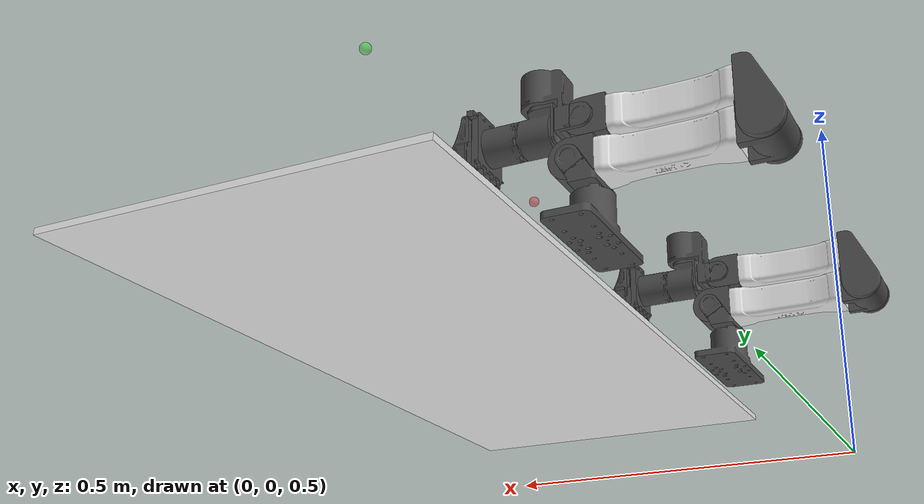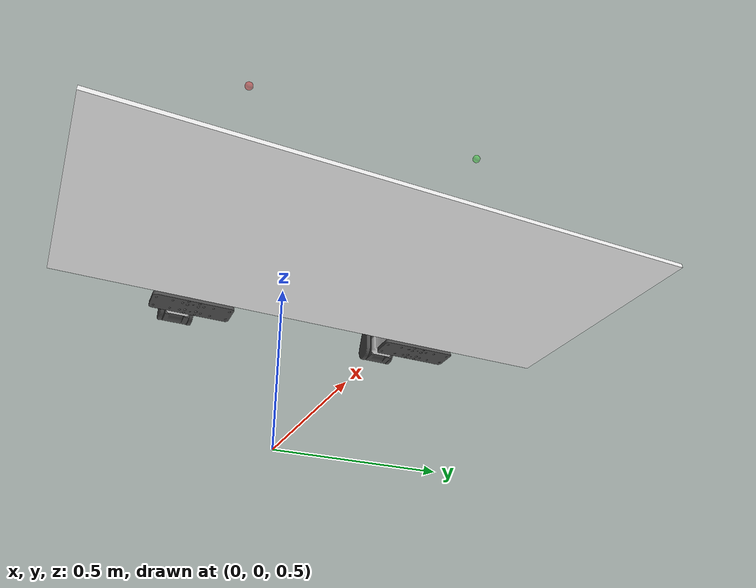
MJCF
<mujoco model="yam_bimanual_empty">
  <compiler angle="radian" meshdir="assets/i2rt_yam/assets" boundmass="0.001" boundinertia="0.001"/>

  <option integrator="implicitfast"/>

  <visual>
    <global azimuth="120" elevation="-20" offwidth="1920" offheight="1080"/>
    <quality shadowsize="8192" offsamples="16"/>
    <headlight ambient="0.40 0.40 0.40" diffuse="0.0 0.0 0.0" specular="0 0 0"/>
    <rgba haze="1.0 1.0 1.0 1"/>
  </visual>

  <default>
    <default class="yam">
      <position inheritrange="1"/>
      <joint frictionloss="0.1" axis="0 0 1"/>
      <default class="dm4340">
        <joint armature="0.032"/>
        <position kp="40" kv="2.5" forcerange="-28 28"/>
      </default>
      <default class="dm4310">
        <joint armature="0.0018"/>
        <position kp="10" kv="1" forcerange="-10 10"/>
      </default>
      <default class="visual">
        <geom type="mesh" contype="0" conaffinity="0" density="0" group="2" material="black"/>
      </default>
      <default class="collision">
        <geom group="3" type="capsule" friction="2.0 0.1 0.01" condim="6"/>
        <default class="sphere_collision">
          <geom size="0.0006 0 0" type="sphere" rgba="1 0 0 1" friction="4.0 0.1 0.01" condim="6" solimp="0.998 0.998 0.001" solref="0.004 1"/>
        </default>
      </default>
      <default class="finger">
        <joint type="slide" armature="0.1" frictionloss="0.1"/>
        <position ctrlrange="0.0 0.0495" kp="400" kv="14" inheritrange="0"/>
      </default>
    </default>
  </default>

  <asset>
    <material name="black" rgba="0.30 0.30 0.30 1"/>
    <material name="white" rgba="0.9 0.9 0.9 1"/>

    <mesh file="model2.stl"/>
    <mesh file="model2__2.stl"/>
    <mesh file="model2__3.stl"/>
    <mesh file="model2__4.stl"/>
    <mesh file="model2__5.stl"/>
    <mesh file="model2__6.stl"/>
    <mesh file="model2__7.stl"/>
    <mesh file="model2__8.stl"/>
    <mesh file="model2__9.stl"/>
    <mesh file="model2__10.stl"/>
    <mesh file="model2__11.stl"/>
    <mesh file="model2__12.stl"/>
    <mesh file="model2__13.stl"/>
    <mesh file="model2__14.stl"/>
    <mesh file="model2__15.stl"/>
    <mesh file="model2__16.stl"/>
    <mesh file="model2__17.stl"/>
    <mesh name="base_visual_gate" file="base_visual_gate.stl"/>
    <mesh name="camera_d405" file="d405.stl"/>

    <texture type="skybox" builtin="gradient" rgb1="1.0 1.0 1.0" rgb2="0.98 0.98 0.98" width="512" height="3072"/>
    <texture type="2d" name="groundplane" builtin="checker" mark="edge"
      rgb1="0.55 0.55 0.55" rgb2="0.50 0.50 0.50" markrgb="0.6 0.6 0.6" width="300" height="300"/>
    <material name="groundplane" texture="groundplane" texuniform="true" texrepeat="5 5" reflectance="0.2"/>
  </asset>

  <worldbody>
    <!-- Lighting -->
    <light pos="0 0 1.5" dir="0 0 -1" directional="true"
      diffuse="0.30 0.30 0.30" specular="0.05 0.05 0.05"/>

    <!-- Floor -->

    <!-- Gate/station structure (visual) -->

    <geom size="0.2975 0.65 0.375" pos="0 0 0.375" type="box" group="3" rgba="1 0 0 0.0"/>

    <!-- Gate collision bodies + top camera -->

    <!-- Enclosure walls ( matching real white-walled workspace) -->
    <!-- Back wall: behind the table, spanning full Y width -->

    <!-- Left wall: at positive Y, from gate to back wall -->

    <!-- Right wall: at negative Y, from gate to back wall -->

    <!-- Play table (visual only + collision plane at surface) -->

    <!-- Side cameras on cage walls -->

    <!-- Overhead camera -->

    <body name="play_table">
      <geom size="0.2975 0.65 0.005" pos="0.6 0 0.745" type="box" group="2" contype="0" conaffinity="0" rgba="0.92 0.92 0.92 1"/>
    </body>
    <geom name="table_plane" type="plane" size="0.2975 0.65 0.01" pos="0.6 0 0.75" rgba="0 0 0 0" group="3"/>

    <!-- ==================== LEFT ARM ==================== -->
    <body name="left_arm" pos="0.2525 0.31 0.75" childclass="yam">
      <geom class="visual" pos="0 0 -0.0006" quat="1 0 0 1" mesh="model2"/>
      <geom class="collision" size="0.033 0.01" pos="0.0 0.0 0.026" quat="1 0 0 0"/>
      <body name="left_link_1" pos="0 0 0.0631" quat="1 0 0 1">
        <inertial pos="-0.00192861 -0.00795735 0.0208176" quat="0.297851 0.642634 0.360045 0.607185" mass="0.12415"
          diaginertia="0.000180751 0.000145532 5.89179e-05"/>
        <joint name="left_joint1" range="-2.61799 3.05433" class="dm4340"/>
        <geom class="visual" pos="5.26159e-07 2.34355e-07 -0.0632" quat="1 0 0 0" mesh="model2__2"/>
        <body name="left_link_2" pos="2.5e-05 -0.02 0.0409" quat="1 1 1 1" gravcomp="1">
          <inertial pos="0.132008 2.10599e-06 0.000293073" quat="1 1 1 1" mass="1.24434"
            diaginertia="0.0121902 0.0121318 0.000683304"/>
          <joint name="left_joint2" range="0 3.66519" class="dm4340"/>
          <geom class="visual" pos="0.0199992 -0.1041 -2.44738e-05" quat="1 -1 -1 -1" mesh="model2__3"/>
          <geom class="visual" pos="0.0199992 -0.1041 -2.44738e-05" quat="1 -1 -1 -1" mesh="model2__4"/>
          <geom class="visual" pos="0.0199992 -0.1041 -2.44738e-05" quat="1 -1 -1 -1" mesh="model2__5" material="white"/>
          <geom class="collision" size="0.032 0.11" pos="0.13 0 0" quat="1 0 1 0"/>
          <geom class="collision" size="0.033 0.02" pos="0 0.0 0" quat="1 0 0 0"/>
          <geom class="collision" size="0.033 0.025" pos="0.265 0 0" quat="1 0 0 0"/>
          <body name="left_link_3" pos="0.264 0 0" quat="0 1 0 0" gravcomp="1">
            <inertial pos="-0.121816 -0.054846 -0.000111108" quat="1 1 1 1" mass="0.853698"
              diaginertia="0.00699732 0.00696112 0.000788244"/>
            <joint name="left_joint3" range="0 3.66519" class="dm4340"/>
            <geom class="visual" pos="-0.244001 0.104101 2.44738e-05" quat="1 1 1 -1" mesh="model2__6"/>
            <geom class="visual" pos="-0.244001 0.104101 2.44738e-05" quat="1 1 1 -1" mesh="model2__7"/>
            <geom class="visual" pos="-0.244001 0.104101 2.44738e-05" quat="1 1 1 -1" mesh="model2__8" material="white"/>
            <geom class="visual" pos="-0.244001 0.104101 2.44738e-05" quat="1 1 1 -1" mesh="model2__9"/>
            <geom class="collision" size="0.034 0.12" pos="-0.14 -0.06 0.0" quat="1 0 1 0"/>
            <geom class="collision" size="0.034 0.015" pos="-0.24 -0.06 0.0" quat="1 0 0 0"/>
            <body name="left_link_4" pos="-0.245 -0.06 0" quat="1 0 0 0" gravcomp="1">
              <inertial pos="-0.0769778 -0.0527104 0.000154878" quat="0.667 0.667 -0.236 -0.236" mass="0.463511"
                diaginertia="0.000791532 0.000744733 0.000282116"/>
              <joint name="left_joint4" range="-1.5708 1.5708" class="dm4310"/>
              <geom class="visual" pos="0.00100023 0.164101 2.44738e-05" quat="1 1 1 -1" mesh="model2__10"/>
              <geom class="collision" size="0.03 0.015" pos="-0.073 -0.06 0.0" quat="1 1 0 0"/>
              <body name="left_link_5" pos="-0.074 -0.0395 2.5e-05" quat="1 -1 1 1" gravcomp="1">
                <inertial pos="3.64861e-05 0.00025665 0.0353526" quat="1 0 0 0" mass="0.350962"
                  diaginertia="0.000197802 0.0001775 0.000147402"/>
                <joint name="left_joint5" range="-1.5708 1.5708" class="dm4310"/>
                <geom class="visual" pos="0 -0.0749971 0.203601" quat="1.32679e-06 1 0 0" mesh="model2__11"/>
                <geom class="collision" size="0.030 0.015" pos="0 0.025 0.0395" quat="1 1 0 0"/>
                <body name="left_link_6" pos="0 0.0353 0.0395" quat="1 -1 0 0" gravcomp="1">
                  <inertial pos="-0.000217767 7.37059e-05 0.0270545" quat="1 1 0 0" mass="0.367476"
                    diaginertia="0.000265958 0.000242686 0.000227409"/>
                  <joint name="left_joint6" range="-2.0944 2.0944" class="dm4310"/>
                  <geom class="visual" pos="0 -0.164101 -0.110597" quat="1 -1 0 0" mesh="model2__12"/>
                  <geom class="visual" pos="0 -0.164101 -0.110597" quat="1 -1 0 0" mesh="model2__13"/>
                  <geom class="collision" size="0.01 0.035" pos="0 0.039 0.052" quat="1 0 1 0"/>
                  <geom class="collision" size="0.030 0.005" pos="0 0.0 0.03" quat="1 0 0 1"/>
                  <geom class="collision" size="0.01 0.035" pos="0 -0.039 0.052" quat="1 0 1 0"/>
                  <site name="left_tcp_site" pos="0 0 0" quat="1 0 0 -1" size="0.005" rgba="1 0 0 1" group="4"/>
                  <site name="left_grasp_site" pos="0 0 0.1347" quat="1 0 0 -1" size="0.005" rgba="0 1 0 1" group="4"/>
                  <!-- Wrist-mounted left camera (D405) — tilt 50° to match real D405 mounting -->
                  <body name="left_camera_d405" pos="-0.0107 0.095 0.062" quat="0.906 0.423 0 0">
                    <geom type="mesh" contype="0" conaffinity="0" group="3" density="0.001" mass="0.001"
                      rgba="0 0 0 0" mesh="camera_d405"/>
                    <geom name="left_cam_col" type="sphere" size="0.02" pos="0 0 0"
                      group="3" rgba="0 0 1 0.0" mass="0.001"/>
                    <body name="left_camera_frame" pos="0.009 0 0" quat="0 0 0 1">
                      <camera name="left" pos="0 0 0" quat="0 1 0 0" fovy="58"/>
                    </body>
                  </body>
                  <body name="left_link_left_finger" pos="-0.037 0.0392 0.0605" quat="1 0 1 0" gravcomp="1">
                    <inertial pos="-0.0192995 -0.0365902 0.039774" quat="0.757351 0.568898 -0.3199 0.0" mass="0.118"
                      diaginertia="0.000159084 0.000154909 4.63655e-05"/>
                    <joint class="finger" name="left_left_finger" range="-0.00205 0.0475"/>
                    <geom class="visual" pos="0.171097 -0.203301 0.037" quat="1 -1 -1 -1" mesh="model2__14"/>
                    <geom class="visual" pos="0.171097 -0.203301 0.037" quat="1 -1 -1 -1" mesh="model2__15"/>
                    <body name="left_lf_rot" quat="1 -1 -1 1" pos="0.0 -0.0392 0.037" gravcomp="1">
                      <geom class="collision" size="0.01 0.03" pos="0.0 -0.02 0.012" quat="1 0 1 0"
                        rgba="0.381493 0.492734 0.780446 1"/>
                      <geom class="collision" size="0.01 0.02" pos="-0.02 -0.01 0.032" quat="1 0 2.5 0"
                        rgba="0.381493 0.492734 0.780446 1"/>
                      <body name="left_lf_down" quat="1 0 0 0" pos="-0.044 0.0 0.0" gravcomp="1">
                        <geom class="collision" size="0.01 0.01" pos="0.0 -0.020 0.012" quat="1 -0.1 0 0"
                          rgba="0.381493 0.492734 0.780446 1"/>
                        <geom class="collision" size="0.003 0.022" pos="0.005 -0.014 0.04" quat="1 -0.2 0 0"
                          rgba="0.381493 0.492734 0.780446 1"/>
                        <geom class="collision" size="0.003 0.022" pos="-0.005 -0.014 0.04" quat="1 -0.2 0 0"
                          rgba="0.381493 0.492734 0.780446 1"/>
                        <geom class="collision" type="box" size="0.006 0.002 0.04" friction="4.0 0.1 0.01" pos="0 -0.0024 0.046" quat="1 0 0 0"
                          rgba="0.381493 0.492734 0.780446 1"/>
                        <geom class="collision" type="box" size="0.006 0.002 0.039" friction="4.0 0.1 0.01" pos="0.027 -0.0024 0.053"
                          quat="1 0 2.5 0" rgba="0.381493 0.492734 0.780446 1"/>
                        <geom class="sphere_collision" pos="0.003  -0.0004 0.078"/>
                        <geom class="sphere_collision" pos="-0.003 -0.0004 0.078"/>
                        <geom class="sphere_collision" pos="0.003  -0.0004 0.07"/>
                        <geom class="sphere_collision" pos="-0.003 -0.0004 0.07"/>
                        <geom class="sphere_collision" pos="0.003  -0.0004 0.06"/>
                        <geom class="sphere_collision" pos="-0.003 -0.0004 0.06"/>
                      </body>
                    </body>
                  </body>
                  <body name="left_link_right_finger" pos="0.037 -0.0392 0.0605" quat="1 0 1 0" gravcomp="1">
                    <inertial pos="-0.0192995 0.0365902 -0.039774" quat="-0.757351 0.568898 -0.3199 0" mass="0.118"
                      diaginertia="0.000159084 0.000154909 4.63655e-05"/>
                    <joint class="finger" name="left_right_finger" range="-0.0475 0.00205"/>
                    <geom class="visual" pos="0.171097 -0.124901 -0.037" quat="1 -1 -1 -1" mesh="model2__16"/>
                    <geom class="visual" pos="0.171097 -0.124901 -0.037" quat="1 -1 -1 -1" mesh="model2__17"/>
                    <body name="left_rf_rot" quat="1 1 -1 -1" pos="0.0 0.0392 -0.037" gravcomp="1">
                      <geom class="collision" size="0.01 0.03" pos="0.0 -0.02 0.012" quat="1 0 1 0"
                        rgba="0.381493 0.492734 0.780446 1"/>
                      <geom class="collision" size="0.01 0.02" pos="0.02 -0.01 0.032" quat="1 0 -2.5 0"
                        rgba="0.381493 0.492734 0.780446 1"/>
                      <body name="left_rf_down" quat="1 0 0 0" pos="0.044 0.0 0.0" gravcomp="1">
                        <geom class="collision" size="0.01 0.01" pos="0.0 -0.020 0.012" quat="1 -0.1 0 0"
                          rgba="0.381493 0.492734 0.780446 1"/>
                        <geom class="collision" size="0.003 0.022" pos="0.005 -0.014 0.04" quat="1 -0.2 0 0"
                          rgba="0.381493 0.492734 0.780446 1"/>
                        <geom class="collision" size="0.003 0.022" pos="-0.005 -0.014 0.04" quat="1 -0.2 0 0"
                          rgba="0.381493 0.492734 0.780446 1"/>
                        <geom class="collision" type="box" size="0.006 0.002 0.04" friction="4.0 0.1 0.01" pos="0 -0.0024 0.046" quat="1 0 0 0"
                          rgba="0.381493 0.492734 0.780446 1"/>
                        <geom class="collision" type="box" size="0.006 0.002 0.039" friction="4.0 0.1 0.01" pos="-0.027 -0.0024 0.053"
                          quat="1 0 -2.5 0" rgba="0.381493 0.492734 0.780446 1"/>
                        <geom class="sphere_collision" pos="0.003  -0.0004 0.078"/>
                        <geom class="sphere_collision" pos="-0.003 -0.0004 0.078"/>
                        <geom class="sphere_collision" pos="0.003  -0.0004 0.07"/>
                        <geom class="sphere_collision" pos="-0.003 -0.0004 0.07"/>
                        <geom class="sphere_collision" pos="0.003  -0.0004 0.06"/>
                        <geom class="sphere_collision" pos="-0.003 -0.0004 0.06"/>
                      </body>
                    </body>
                  </body>
                </body>
              </body>
            </body>
          </body>
        </body>
      </body>
    </body>

    <!-- ==================== RIGHT ARM ==================== -->
    <body name="right_arm" pos="0.2525 -0.31 0.75" childclass="yam">
      <geom class="visual" pos="0 0 -0.0006" quat="1 0 0 1" mesh="model2"/>
      <geom class="collision" size="0.033 0.01" pos="0.0 0.0 0.026" quat="1 0 0 0"/>
      <body name="right_link_1" pos="0 0 0.0631" quat="1 0 0 1">
        <inertial pos="-0.00192861 -0.00795735 0.0208176" quat="0.297851 0.642634 0.360045 0.607185" mass="0.12415"
          diaginertia="0.000180751 0.000145532 5.89179e-05"/>
        <joint name="right_joint1" range="-2.61799 3.05433" class="dm4340"/>
        <geom class="visual" pos="5.26159e-07 2.34355e-07 -0.0632" quat="1 0 0 0" mesh="model2__2"/>
        <body name="right_link_2" pos="2.5e-05 -0.02 0.0409" quat="1 1 1 1" gravcomp="1">
          <inertial pos="0.132008 2.10599e-06 0.000293073" quat="1 1 1 1" mass="1.24434"
            diaginertia="0.0121902 0.0121318 0.000683304"/>
          <joint name="right_joint2" range="0 3.66519" class="dm4340"/>
          <geom class="visual" pos="0.0199992 -0.1041 -2.44738e-05" quat="1 -1 -1 -1" mesh="model2__3"/>
          <geom class="visual" pos="0.0199992 -0.1041 -2.44738e-05" quat="1 -1 -1 -1" mesh="model2__4"/>
          <geom class="visual" pos="0.0199992 -0.1041 -2.44738e-05" quat="1 -1 -1 -1" mesh="model2__5" material="white"/>
          <geom class="collision" size="0.032 0.11" pos="0.13 0 0" quat="1 0 1 0"/>
          <geom class="collision" size="0.033 0.02" pos="0 0.0 0" quat="1 0 0 0"/>
          <geom class="collision" size="0.033 0.025" pos="0.265 0 0" quat="1 0 0 0"/>
          <body name="right_link_3" pos="0.264 0 0" quat="0 1 0 0" gravcomp="1">
            <inertial pos="-0.121816 -0.054846 -0.000111108" quat="1 1 1 1" mass="0.853698"
              diaginertia="0.00699732 0.00696112 0.000788244"/>
            <joint name="right_joint3" range="0 3.66519" class="dm4340"/>
            <geom class="visual" pos="-0.244001 0.104101 2.44738e-05" quat="1 1 1 -1" mesh="model2__6"/>
            <geom class="visual" pos="-0.244001 0.104101 2.44738e-05" quat="1 1 1 -1" mesh="model2__7"/>
            <geom class="visual" pos="-0.244001 0.104101 2.44738e-05" quat="1 1 1 -1" mesh="model2__8" material="white"/>
            <geom class="visual" pos="-0.244001 0.104101 2.44738e-05" quat="1 1 1 -1" mesh="model2__9"/>
            <geom class="collision" size="0.034 0.12" pos="-0.14 -0.06 0.0" quat="1 0 1 0"/>
            <geom class="collision" size="0.034 0.015" pos="-0.24 -0.06 0.0" quat="1 0 0 0"/>
            <body name="right_link_4" pos="-0.245 -0.06 0" quat="1 0 0 0" gravcomp="1">
              <inertial pos="-0.0769778 -0.0527104 0.000154878" quat="0.667 0.667 -0.236 -0.236" mass="0.463511"
                diaginertia="0.000791532 0.000744733 0.000282116"/>
              <joint name="right_joint4" range="-1.5708 1.5708" class="dm4310"/>
              <geom class="visual" pos="0.00100023 0.164101 2.44738e-05" quat="1 1 1 -1" mesh="model2__10"/>
              <geom class="collision" size="0.03 0.015" pos="-0.073 -0.06 0.0" quat="1 1 0 0"/>
              <body name="right_link_5" pos="-0.074 -0.0395 2.5e-05" quat="1 -1 1 1" gravcomp="1">
                <inertial pos="3.64861e-05 0.00025665 0.0353526" quat="1 0 0 0" mass="0.350962"
                  diaginertia="0.000197802 0.0001775 0.000147402"/>
                <joint name="right_joint5" range="-1.5708 1.5708" class="dm4310"/>
                <geom class="visual" pos="0 -0.0749971 0.203601" quat="1.32679e-06 1 0 0" mesh="model2__11"/>
                <geom class="collision" size="0.030 0.015" pos="0 0.025 0.0395" quat="1 1 0 0"/>
                <body name="right_link_6" pos="0 0.0353 0.0395" quat="1 -1 0 0" gravcomp="1">
                  <inertial pos="-0.000217767 7.37059e-05 0.0270545" quat="1 1 0 0" mass="0.367476"
                    diaginertia="0.000265958 0.000242686 0.000227409"/>
                  <joint name="right_joint6" range="-2.0944 2.0944" class="dm4310"/>
                  <geom class="visual" pos="0 -0.164101 -0.110597" quat="1 -1 0 0" mesh="model2__12"/>
                  <geom class="visual" pos="0 -0.164101 -0.110597" quat="1 -1 0 0" mesh="model2__13"/>
                  <geom class="collision" size="0.01 0.035" pos="0 0.039 0.052" quat="1 0 1 0"/>
                  <geom class="collision" size="0.030 0.005" pos="0 0.0 0.03" quat="1 0 0 1"/>
                  <geom class="collision" size="0.01 0.035" pos="0 -0.039 0.052" quat="1 0 1 0"/>
                  <site name="right_tcp_site" pos="0 0 0" quat="1 0 0 -1" size="0.005" rgba="1 0 0 1" group="4"/>
                  <site name="right_grasp_site" pos="0 0 0.1347" quat="1 0 0 -1" size="0.005" rgba="0 1 0 1" group="4"/>
                  <!-- Wrist-mounted right camera (D405) — tilt 50° to match real D405 mounting -->
                  <body name="right_camera_d405" pos="-0.0107 0.095 0.062" quat="0.906 0.423 0 0">
                    <geom type="mesh" contype="0" conaffinity="0" group="3" density="0.001" mass="0.001"
                      rgba="0 0 0 0" mesh="camera_d405"/>
                    <geom name="right_cam_col" type="sphere" size="0.02" pos="0 0 0"
                      group="3" rgba="0 0 1 0.0" mass="0.001"/>
                    <body name="right_camera_frame" pos="0.009 0 0" quat="0 0 0 1">
                      <camera name="right" pos="0 0 0" quat="0 1 0 0" fovy="58"/>
                    </body>
                  </body>
                  <body name="right_link_left_finger" pos="-0.037 0.0392 0.0605" quat="1 0 1 0" gravcomp="1">
                    <inertial pos="-0.0192995 -0.0365902 0.039774" quat="0.757351 0.568898 -0.3199 0.0" mass="0.118"
                      diaginertia="0.000159084 0.000154909 4.63655e-05"/>
                    <joint class="finger" name="right_left_finger" range="-0.00205 0.0475"/>
                    <geom class="visual" pos="0.171097 -0.203301 0.037" quat="1 -1 -1 -1" mesh="model2__14"/>
                    <geom class="visual" pos="0.171097 -0.203301 0.037" quat="1 -1 -1 -1" mesh="model2__15"/>
                    <body name="right_lf_rot" quat="1 -1 -1 1" pos="0.0 -0.0392 0.037" gravcomp="1">
                      <geom class="collision" size="0.01 0.03" pos="0.0 -0.02 0.012" quat="1 0 1 0"
                        rgba="0.381493 0.492734 0.780446 1"/>
                      <geom class="collision" size="0.01 0.02" pos="-0.02 -0.01 0.032" quat="1 0 2.5 0"
                        rgba="0.381493 0.492734 0.780446 1"/>
                      <body name="right_lf_down" quat="1 0 0 0" pos="-0.044 0.0 0.0" gravcomp="1">
                        <geom class="collision" size="0.01 0.01" pos="0.0 -0.020 0.012" quat="1 -0.1 0 0"
                          rgba="0.381493 0.492734 0.780446 1"/>
                        <geom class="collision" size="0.003 0.022" pos="0.005 -0.014 0.04" quat="1 -0.2 0 0"
                          rgba="0.381493 0.492734 0.780446 1"/>
                        <geom class="collision" size="0.003 0.022" pos="-0.005 -0.014 0.04" quat="1 -0.2 0 0"
                          rgba="0.381493 0.492734 0.780446 1"/>
                        <geom class="collision" type="box" size="0.006 0.002 0.04" friction="4.0 0.1 0.01" pos="0 -0.0024 0.046" quat="1 0 0 0"
                          rgba="0.381493 0.492734 0.780446 1"/>
                        <geom class="collision" type="box" size="0.006 0.002 0.039" friction="4.0 0.1 0.01" pos="0.027 -0.0024 0.053"
                          quat="1 0 2.5 0" rgba="0.381493 0.492734 0.780446 1"/>
                        <geom class="sphere_collision" pos="0.003  -0.0004 0.078"/>
                        <geom class="sphere_collision" pos="-0.003 -0.0004 0.078"/>
                        <geom class="sphere_collision" pos="0.003  -0.0004 0.07"/>
                        <geom class="sphere_collision" pos="-0.003 -0.0004 0.07"/>
                        <geom class="sphere_collision" pos="0.003  -0.0004 0.06"/>
                        <geom class="sphere_collision" pos="-0.003 -0.0004 0.06"/>
                      </body>
                    </body>
                  </body>
                  <body name="right_link_right_finger" pos="0.037 -0.0392 0.0605" quat="1 0 1 0" gravcomp="1">
                    <inertial pos="-0.0192995 0.0365902 -0.039774" quat="-0.757351 0.568898 -0.3199 0" mass="0.118"
                      diaginertia="0.000159084 0.000154909 4.63655e-05"/>
                    <joint class="finger" name="right_right_finger" range="-0.0475 0.00205"/>
                    <geom class="visual" pos="0.171097 -0.124901 -0.037" quat="1 -1 -1 -1" mesh="model2__16"/>
                    <geom class="visual" pos="0.171097 -0.124901 -0.037" quat="1 -1 -1 -1" mesh="model2__17"/>
                    <body name="right_rf_rot" quat="1 1 -1 -1" pos="0.0 0.0392 -0.037" gravcomp="1">
                      <geom class="collision" size="0.01 0.03" pos="0.0 -0.02 0.012" quat="1 0 1 0"
                        rgba="0.381493 0.492734 0.780446 1"/>
                      <geom class="collision" size="0.01 0.02" pos="0.02 -0.01 0.032" quat="1 0 -2.5 0"
                        rgba="0.381493 0.492734 0.780446 1"/>
                      <body name="right_rf_down" quat="1 0 0 0" pos="0.044 0.0 0.0" gravcomp="1">
                        <geom class="collision" size="0.01 0.01" pos="0.0 -0.020 0.012" quat="1 -0.1 0 0"
                          rgba="0.381493 0.492734 0.780446 1"/>
                        <geom class="collision" size="0.003 0.022" pos="0.005 -0.014 0.04" quat="1 -0.2 0 0"
                          rgba="0.381493 0.492734 0.780446 1"/>
                        <geom class="collision" size="0.003 0.022" pos="-0.005 -0.014 0.04" quat="1 -0.2 0 0"
                          rgba="0.381493 0.492734 0.780446 1"/>
                        <geom class="collision" type="box" size="0.006 0.002 0.04" friction="4.0 0.1 0.01" pos="0 -0.0024 0.046" quat="1 0 0 0"
                          rgba="0.381493 0.492734 0.780446 1"/>
                        <geom class="collision" type="box" size="0.006 0.002 0.039" friction="4.0 0.1 0.01" pos="-0.027 -0.0024 0.053"
                          quat="1 0 -2.5 0" rgba="0.381493 0.492734 0.780446 1"/>
                        <geom class="sphere_collision" pos="0.003  -0.0004 0.078"/>
                        <geom class="sphere_collision" pos="-0.003 -0.0004 0.078"/>
                        <geom class="sphere_collision" pos="0.003  -0.0004 0.07"/>
                        <geom class="sphere_collision" pos="-0.003 -0.0004 0.07"/>
                        <geom class="sphere_collision" pos="0.003  -0.0004 0.06"/>
                        <geom class="sphere_collision" pos="-0.003 -0.0004 0.06"/>
                      </body>
                    </body>
                  </body>
                </body>
              </body>
            </body>
          </body>
        </body>
      </body>
    </body>

    <!-- Mocap targets for VR controller arm control -->
    <body mocap="true" name="left_mocap" pos="0.6295 0.3100 1.1426" quat="0.7071 0 0.7071 0">
      <site name="left_mocap_site" size="0.01" type="sphere" rgba="0.2 0.9 0.2 0.5"/>
    </body>
    <body mocap="true" name="right_mocap" pos="0.6295 -0.3100 1.1426" quat="0.7071 0 0.7071 0">
      <site name="right_mocap_site" size="0.01" type="sphere" rgba="0.9 0.2 0.2 0.5"/>
    </body>
  </worldbody>

  <!-- Equality constraints: mirror left/right finger per arm -->
  <equality>
    <joint joint1="left_left_finger" joint2="left_right_finger" polycoef="0 -1 0 0 0"/>
    <joint joint1="right_left_finger" joint2="right_right_finger" polycoef="0 -1 0 0 0"/>
      <weld name="left_mocap_weld" site1="left_mocap_site" site2="left_grasp_site"/>
    <weld name="right_mocap_weld" site1="right_mocap_site" site2="right_grasp_site"/>
  </equality>

  <!-- Actuators: 14 total (7 per arm) -->
  <actuator>
    <!-- Left arm -->
    <position name="left_joint1" joint="left_joint1" class="dm4340"/>
    <position name="left_joint2" joint="left_joint2" class="dm4340"/>
    <position name="left_joint3" joint="left_joint3" class="dm4340"/>
    <position name="left_joint4" joint="left_joint4" class="dm4310" kp="20" kv=".5"/>
    <position name="left_joint5" joint="left_joint5" class="dm4310"/>
    <position name="left_joint6" joint="left_joint6" class="dm4310"/>
    <position class="finger" name="left_gripper" joint="left_left_finger"/>
    <!-- Right arm -->
    <position name="right_joint1" joint="right_joint1" class="dm4340"/>
    <position name="right_joint2" joint="right_joint2" class="dm4340"/>
    <position name="right_joint3" joint="right_joint3" class="dm4340"/>
    <position name="right_joint4" joint="right_joint4" class="dm4310" kp="20" kv=".5"/>
    <position name="right_joint5" joint="right_joint5" class="dm4310"/>
    <position name="right_joint6" joint="right_joint6" class="dm4310"/>
    <position class="finger" name="right_gripper" joint="right_left_finger"/>
  </actuator>

  <!-- Home keyframe: both arms at default position -->
  <keyframe>
    <key name="home"
      qpos="0 1.047 1.047 0 0 0 0 0  0 1.047 1.047 0 0 0 0 0"
      ctrl="0 1.047 1.047 0 0 0 0  0 1.047 1.047 0 0 0 0"/>
  </keyframe>
</mujoco>
